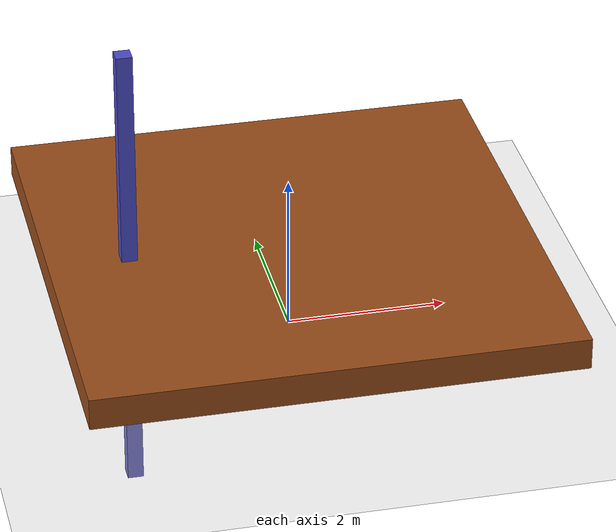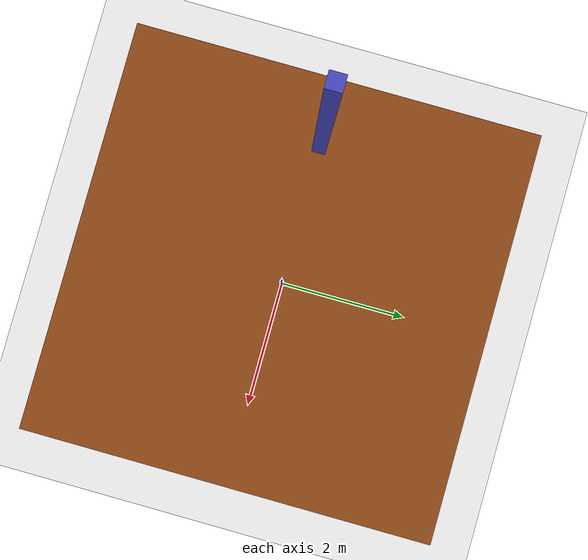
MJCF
<mujoco>
  <option gravity="0 0 -9.81" />
  <worldbody>
    <body name="object_2" pos="0 0 1">
      <geom type="box" size="3 3 0.2" rgba="0.6 0.3 0.1 1" friction="0.7 0.7 0.7" />
    </body>
    <body name="object_3" pos="0 0 -0.1">
      <geom type="plane" size="30 30 0.1" rgba="0.8 0.8 0.8 1" friction="1 1 1" />
    </body>
    <body name="object_1" pos="-2 0 1">
      <geom type="box" size="0.1 0.1 3" density="1" rgba="0.3 0.3 0.8 1" />
      <joint name="object_1_joint" type="free" />
    </body>
  </worldbody>
</mujoco>
